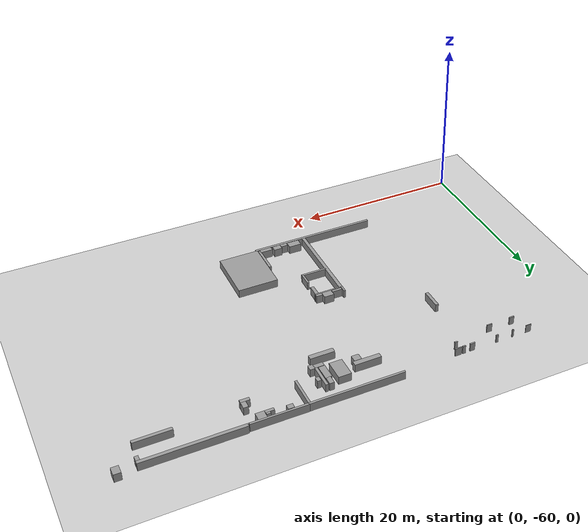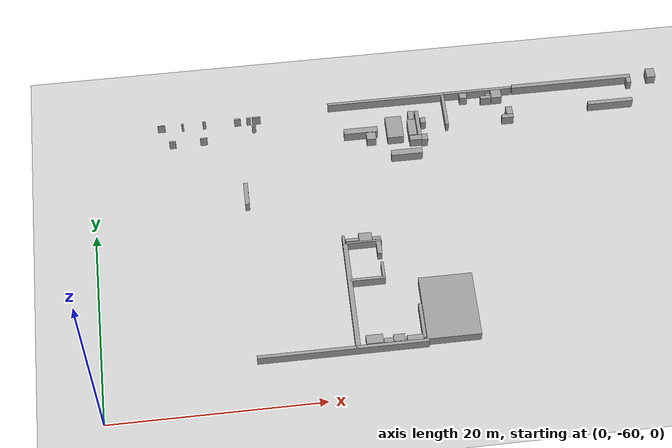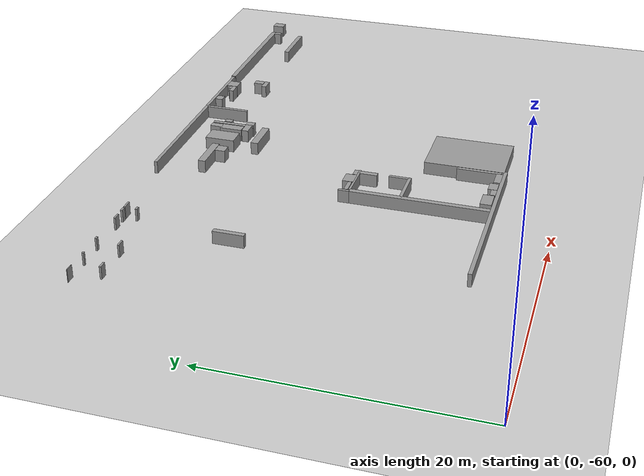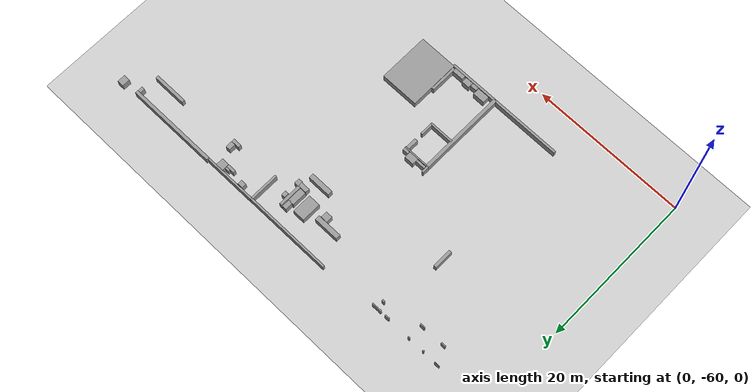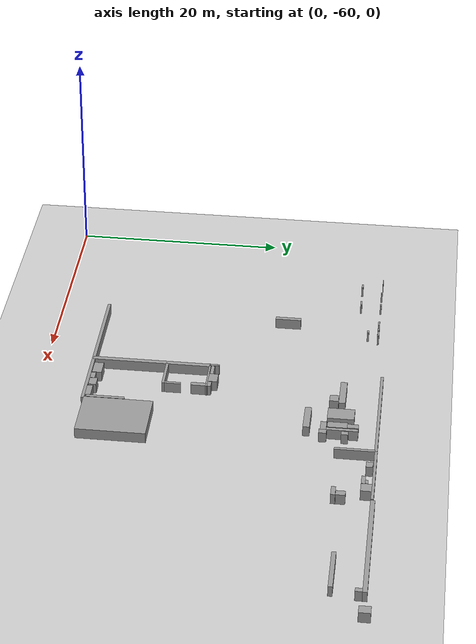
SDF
<sdf version="1.4">
 <world name="default">
  <model name="ground_plane">
   <static>1</static>
   <link name="link">
    <collision name="collision">
     <geometry><plane><normal>0 0 1</normal><size>300 300</size></plane></geometry>
     <surface><friction><ode><mu>100</mu><mu2>50</mu2></ode></friction></surface>
    </collision>
    <visual name="visual">
     <cast_shadows>0</cast_shadows>
     <geometry><plane><normal>0 0 1</normal><size>300 300</size></plane></geometry>
     <material>
      <script><uri>file://media/materials/scripts/gazebo.material</uri><name>Gazebo/Grey</name></script>
     </material>
    </visual>
    <velocity_decay><linear>0</linear><angular>0</angular></velocity_decay>
   </link>
  </model>
  <model name="wall_rect4319">
   <static>1</static>
   <link name="link">
    <pose>26.97291001315589 -31.96247932895389 0 0 -0 0</pose>
    <collision name="collision">
     <geometry><box><size>0.8999541167393121 0.8485281466409716 2.0</size></box></geometry>
    </collision>
    <visual name="visual">
     <cast_shadows>0</cast_shadows>
     <geometry><box><size>0.8999541167393121 0.8485281466409716 2.0</size></box></geometry>
     <material>
      <script>
       <uri>model://grey_wall/materials/scripts</uri>
       <uri>model://grey_wall/materials/textures</uri>
       <name>vrc/grey_wall</name>
      </script>
     </material>
    </visual>
    <velocity_decay><linear>0</linear><angular>0</angular></velocity_decay>
   </link>
  </model>
  <model name="wall_rect4321">
   <static>1</static>
   <link name="link">
    <pose>26.02795865855575 -31.203947396745924 0 0 -0 0</pose>
    <collision name="collision">
     <geometry><box><size>3.2784041898407854 0.6171113747936674 2.0</size></box></geometry>
    </collision>
    <visual name="visual">
     <cast_shadows>0</cast_shadows>
     <geometry><box><size>3.2784041898407854 0.6171113747936674 2.0</size></box></geometry>
     <material>
      <script>
       <uri>model://grey_wall/materials/scripts</uri>
       <uri>model://grey_wall/materials/textures</uri>
       <name>vrc/grey_wall</name>
      </script>
     </material>
    </visual>
    <velocity_decay><linear>0</linear><angular>0</angular></velocity_decay>
   </link>
  </model>
  <model name="wall_rect4323">
   <static>1</static>
   <link name="link">
    <pose>14.400000197989906 -37.359680342057445 0 0 -0 0</pose>
    <collision name="collision">
     <geometry><box><size>0.4000000215988988 2.47272746646285 2.0</size></box></geometry>
    </collision>
    <visual name="visual">
     <cast_shadows>0</cast_shadows>
     <geometry><box><size>0.4000000215988988 2.47272746646285 2.0</size></box></geometry>
     <material>
      <script>
       <uri>model://grey_wall/materials/scripts</uri>
       <uri>model://grey_wall/materials/textures</uri>
       <name>vrc/grey_wall</name>
      </script>
     </material>
    </visual>
    <velocity_decay><linear>0</linear><angular>0</angular></velocity_decay>
   </link>
  </model>
  <model name="wall_rect4238">
   <static>1</static>
   <link name="link">
    <pose>23.018182446186163 -43.64149906581162 0 0 -0 0</pose>
    <collision name="collision">
     <geometry><box><size>0.23636363963619678 0.890909145888106 2.0</size></box></geometry>
    </collision>
    <visual name="visual">
     <cast_shadows>0</cast_shadows>
     <geometry><box><size>0.23636363963619678 0.890909145888106 2.0</size></box></geometry>
     <material>
      <script>
       <uri>model://grey_wall/materials/scripts</uri>
       <uri>model://grey_wall/materials/textures</uri>
       <name>vrc/grey_wall</name>
      </script>
     </material>
    </visual>
    <velocity_decay><linear>0</linear><angular>0</angular></velocity_decay>
   </link>
  </model>
  <model name="wall_rect4240">
   <static>1</static>
   <link name="link">
    <pose>24.877274373043367 -44.06422562872055 0 0 -0 0</pose>
    <collision name="collision">
     <geometry><box><size>3.318182017808004 0.17272727207276062 2.0</size></box></geometry>
    </collision>
    <visual name="visual">
     <cast_shadows>0</cast_shadows>
     <geometry><box><size>3.318182017808004 0.17272727207276062 2.0</size></box></geometry>
     <material>
      <script>
       <uri>model://grey_wall/materials/scripts</uri>
       <uri>model://grey_wall/materials/textures</uri>
       <name>vrc/grey_wall</name>
      </script>
     </material>
    </visual>
    <velocity_decay><linear>0</linear><angular>0</angular></velocity_decay>
   </link>
  </model>
  <model name="wall_rect4242">
   <static>1</static>
   <link name="link">
    <pose>25.08181824857841 -43.559680997224035 0 0 -0 0</pose>
    <collision name="collision">
     <geometry><box><size>1.2181818522164467 0.890909145888106 2.0</size></box></geometry>
    </collision>
    <visual name="visual">
     <cast_shadows>0</cast_shadows>
     <geometry><box><size>1.2181818522164467 0.890909145888106 2.0</size></box></geometry>
     <material>
      <script>
       <uri>model://grey_wall/materials/scripts</uri>
       <uri>model://grey_wall/materials/textures</uri>
       <name>vrc/grey_wall</name>
      </script>
     </material>
    </visual>
    <velocity_decay><linear>0</linear><angular>0</angular></velocity_decay>
   </link>
  </model>
  <model name="wall_rect4244">
   <static>1</static>
   <link name="link">
    <pose>26.109091646071516 -43.7960433409263 0 0 -0 0</pose>
    <collision name="collision">
     <geometry><box><size>0.7636364107612338 0.34545454414552124 2.0</size></box></geometry>
    </collision>
    <visual name="visual">
     <cast_shadows>0</cast_shadows>
     <geometry><box><size>0.7636364107612338 0.34545454414552124 2.0</size></box></geometry>
     <material>
      <script>
       <uri>model://grey_wall/materials/scripts</uri>
       <uri>model://grey_wall/materials/textures</uri>
       <name>vrc/grey_wall</name>
      </script>
     </material>
    </visual>
    <velocity_decay><linear>0</linear><angular>0</angular></velocity_decay>
   </link>
  </model>
  <model name="wall_rect4246">
   <static>1</static>
   <link name="link">
    <pose>23.818183169749272 -43.764227911004184 0 0 -0 0</pose>
    <collision name="collision">
     <geometry><box><size>1.2545454702537446 0.31818183061754785 2.0</size></box></geometry>
    </collision>
    <visual name="visual">
     <cast_shadows>0</cast_shadows>
     <geometry><box><size>1.2545454702537446 0.31818183061754785 2.0</size></box></geometry>
     <material>
      <script>
       <uri>model://grey_wall/materials/scripts</uri>
       <uri>model://grey_wall/materials/textures</uri>
       <name>vrc/grey_wall</name>
      </script>
     </material>
    </visual>
    <velocity_decay><linear>0</linear><angular>0</angular></velocity_decay>
   </link>
  </model>
  <model name="wall_rect4248">
   <static>1</static>
   <link name="link">
    <pose>40.504547252162894 -31.123316871612616 0 0 -0 0</pose>
    <collision name="collision">
     <geometry><box><size>1.118181902613877 0.41818184501681366 2.0</size></box></geometry>
    </collision>
    <visual name="visual">
     <cast_shadows>0</cast_shadows>
     <geometry><box><size>1.118181902613877 0.41818184501681366 2.0</size></box></geometry>
     <material>
      <script>
       <uri>model://grey_wall/materials/scripts</uri>
       <uri>model://grey_wall/materials/textures</uri>
       <name>vrc/grey_wall</name>
      </script>
     </material>
    </visual>
    <velocity_decay><linear>0</linear><angular>0</angular></velocity_decay>
   </link>
  </model>
  <model name="wall_rect4250">
   <static>1</static>
   <link name="link">
    <pose>40.7636376490981 -30.459681119617798 0 0 -0 0</pose>
    <collision name="collision">
     <geometry><box><size>0.6000000143992659 0.872727336869457 2.0</size></box></geometry>
    </collision>
    <visual name="visual">
     <cast_shadows>0</cast_shadows>
     <geometry><box><size>0.6000000143992659 0.872727336869457 2.0</size></box></geometry>
     <material>
      <script>
       <uri>model://grey_wall/materials/scripts</uri>
       <uri>model://grey_wall/materials/textures</uri>
       <name>vrc/grey_wall</name>
      </script>
     </material>
    </visual>
    <velocity_decay><linear>0</linear><angular>0</angular></velocity_decay>
   </link>
  </model>
  <model name="wall_rect4252">
   <static>1</static>
   <link name="link">
    <pose>34.490909646262594 -29.61422566831852 0 0 -0 0</pose>
    <collision name="collision">
     <geometry><box><size>0.29090910988994134 3.709091055701616 2.0</size></box></geometry>
    </collision>
    <visual name="visual">
     <cast_shadows>0</cast_shadows>
     <geometry><box><size>0.29090910988994134 3.709091055701616 2.0</size></box></geometry>
     <material>
      <script>
       <uri>model://grey_wall/materials/scripts</uri>
       <uri>model://grey_wall/materials/textures</uri>
       <name>vrc/grey_wall</name>
      </script>
     </material>
    </visual>
    <velocity_decay><linear>0</linear><angular>0</angular></velocity_decay>
   </link>
  </model>
  <model name="wall_rect4254">
   <static>1</static>
   <link name="link">
    <pose>39.7636395066034 -28.26877046900641 0 0 -0 0</pose>
    <collision name="collision">
     <geometry><box><size>1.0181818810149783 0.981818190981351 2.0</size></box></geometry>
    </collision>
    <visual name="visual">
     <cast_shadows>0</cast_shadows>
     <geometry><box><size>1.0181818810149783 0.981818190981351 2.0</size></box></geometry>
     <material>
      <script>
       <uri>model://grey_wall/materials/scripts</uri>
       <uri>model://grey_wall/materials/textures</uri>
       <name>vrc/grey_wall</name>
      </script>
     </material>
    </visual>
    <velocity_decay><linear>0</linear><angular>0</angular></velocity_decay>
   </link>
  </model>
  <model name="wall_rect4256">
   <static>1</static>
   <link name="link">
    <pose>38.709091847661234 -28.577862363465258 0 0 -0 0</pose>
    <collision name="collision">
     <geometry><box><size>1.0545454990522762 0.3636363747630691 2.0</size></box></geometry>
    </collision>
    <visual name="visual">
     <cast_shadows>0</cast_shadows>
     <geometry><box><size>1.0545454990522762 0.3636363747630691 2.0</size></box></geometry>
     <material>
      <script>
       <uri>model://grey_wall/materials/scripts</uri>
       <uri>model://grey_wall/materials/textures</uri>
       <name>vrc/grey_wall</name>
      </script>
     </material>
    </visual>
    <velocity_decay><linear>0</linear><angular>0</angular></velocity_decay>
   </link>
  </model>
  <model name="wall_rect4258">
   <static>1</static>
   <link name="link">
    <pose>38.95454668699171 -28.268771725342354 0 0 -0 0</pose>
    <collision name="collision">
     <geometry><box><size>0.4909091026903084 0.25454546305411163 2.0</size></box></geometry>
    </collision>
    <visual name="visual">
     <cast_shadows>0</cast_shadows>
     <geometry><box><size>0.4909091026903084 0.25454546305411163 2.0</size></box></geometry>
     <material>
      <script>
       <uri>model://grey_wall/materials/scripts</uri>
       <uri>model://grey_wall/materials/textures</uri>
       <name>vrc/grey_wall</name>
      </script>
     </material>
    </visual>
    <velocity_decay><linear>0</linear><angular>0</angular></velocity_decay>
   </link>
  </model>
  <model name="wall_rect4260">
   <static>1</static>
   <link name="link">
    <pose>37.94545453694589 -27.66877087578567 0 0 -0 0</pose>
    <collision name="collision">
     <geometry><box><size>6.763636338764904 0.25454546305411163 2.0</size></box></geometry>
    </collision>
    <visual name="visual">
     <cast_shadows>0</cast_shadows>
     <geometry><box><size>6.763636338764904 0.25454546305411163 2.0</size></box></geometry>
     <material>
      <script>
       <uri>model://grey_wall/materials/scripts</uri>
       <uri>model://grey_wall/materials/textures</uri>
       <name>vrc/grey_wall</name>
      </script>
     </material>
    </visual>
    <velocity_decay><linear>0</linear><angular>0</angular></velocity_decay>
   </link>
  </model>
  <model name="wall_rect4262">
   <static>1</static>
   <link name="link">
    <pose>36.50909184046161 -28.159680838832113 0 0 -0 0</pose>
    <collision name="collision">
     <geometry><box><size>0.7272727207276064 0.6181818666157125 2.0</size></box></geometry>
    </collision>
    <visual name="visual">
     <cast_shadows>0</cast_shadows>
     <geometry><box><size>0.7272727207276064 0.6181818666157125 2.0</size></box></geometry>
     <material>
      <script>
       <uri>model://grey_wall/materials/scripts</uri>
       <uri>model://grey_wall/materials/textures</uri>
       <name>vrc/grey_wall</name>
      </script>
     </material>
    </visual>
    <velocity_decay><linear>0</linear><angular>0</angular></velocity_decay>
   </link>
  </model>
  <model name="wall_rect4264">
   <static>1</static>
   <link name="link">
    <pose>31.03636476997857 -31.368772038526387 0 0 -0 0</pose>
    <collision name="collision">
     <geometry><box><size>0.8000000287985317 1.9090909549067552 2.0</size></box></geometry>
    </collision>
    <visual name="visual">
     <cast_shadows>0</cast_shadows>
     <geometry><box><size>0.8000000287985317 1.9090909549067552 2.0</size></box></geometry>
     <material>
      <script>
       <uri>model://grey_wall/materials/scripts</uri>
       <uri>model://grey_wall/materials/textures</uri>
       <name>vrc/grey_wall</name>
      </script>
     </material>
    </visual>
    <velocity_decay><linear>0</linear><angular>0</angular></velocity_decay>
   </link>
  </model>
  <model name="wall_rect4266">
   <static>1</static>
   <link name="link">
    <pose>31.254546154218872 -32.65967982728368 0 0 -0 0</pose>
    <collision name="collision">
     <geometry><box><size>1.1636364251604996 0.5636363603638033 2.0</size></box></geometry>
    </collision>
    <visual name="visual">
     <cast_shadows>0</cast_shadows>
     <geometry><box><size>1.1636364251604996 0.5636363603638033 2.0</size></box></geometry>
     <material>
      <script>
       <uri>model://grey_wall/materials/scripts</uri>
       <uri>model://grey_wall/materials/textures</uri>
       <name>vrc/grey_wall</name>
      </script>
     </material>
    </visual>
    <velocity_decay><linear>0</linear><angular>0</angular></velocity_decay>
   </link>
  </model>
  <model name="wall_rect4268">
   <static>1</static>
   <link name="link">
    <pose>32.1000018359064 -32.67786342541112 0 0 -0 0</pose>
    <collision name="collision">
     <geometry><box><size>0.6000000143992659 0.709090954906755 2.0</size></box></geometry>
    </collision>
    <visual name="visual">
     <cast_shadows>0</cast_shadows>
     <geometry><box><size>0.6000000143992659 0.709090954906755 2.0</size></box></geometry>
     <material>
      <script>
       <uri>model://grey_wall/materials/scripts</uri>
       <uri>model://grey_wall/materials/textures</uri>
       <name>vrc/grey_wall</name>
      </script>
     </material>
    </visual>
    <velocity_decay><linear>0</linear><angular>0</angular></velocity_decay>
   </link>
  </model>
  <model name="wall_rect4270">
   <static>1</static>
   <link name="link">
    <pose>31.681819292525187 -30.923316889611698 0 0 -0 0</pose>
    <collision name="collision">
     <geometry><box><size>0.34545454414552124 2.9454547169367116 2.0</size></box></geometry>
    </collision>
    <visual name="visual">
     <cast_shadows>0</cast_shadows>
     <geometry><box><size>0.34545454414552124 2.9454547169367116 2.0</size></box></geometry>
     <material>
      <script>
       <uri>model://grey_wall/materials/scripts</uri>
       <uri>model://grey_wall/materials/textures</uri>
       <name>vrc/grey_wall</name>
      </script>
     </material>
    </visual>
    <velocity_decay><linear>0</linear><angular>0</angular></velocity_decay>
   </link>
  </model>
  <model name="wall_rect4272">
   <static>1</static>
   <link name="link">
    <pose>32.190909844252495 -30.659679859682033 0 0 -0 0</pose>
    <collision name="collision">
     <geometry><box><size>0.4909091026903084 0.6363636612350957 2.0</size></box></geometry>
    </collision>
    <visual name="visual">
     <cast_shadows>0</cast_shadows>
     <geometry><box><size>0.4909091026903084 0.6363636612350957 2.0</size></box></geometry>
     <material>
      <script>
       <uri>model://grey_wall/materials/scripts</uri>
       <uri>model://grey_wall/materials/textures</uri>
       <name>vrc/grey_wall</name>
      </script>
     </material>
    </visual>
    <velocity_decay><linear>0</linear><angular>0</angular></velocity_decay>
   </link>
  </model>
  <model name="wall_rect4274">
   <static>1</static>
   <link name="link">
    <pose>31.099999586021106 -29.968771340161993 0 0 -0 0</pose>
    <collision name="collision">
     <geometry><box><size>0.5636363603638033 1.036363618037298 2.0</size></box></geometry>
    </collision>
    <visual name="visual">
     <cast_shadows>0</cast_shadows>
     <geometry><box><size>0.5636363603638033 1.036363618037298 2.0</size></box></geometry>
     <material>
      <script>
       <uri>model://grey_wall/materials/scripts</uri>
       <uri>model://grey_wall/materials/textures</uri>
       <name>vrc/grey_wall</name>
      </script>
     </material>
    </visual>
    <velocity_decay><linear>0</linear><angular>0</angular></velocity_decay>
   </link>
  </model>
  <model name="wall_rect4276">
   <static>1</static>
   <link name="link">
    <pose>29.327272742326507 -31.168770591400165 0 0 -0 0</pose>
    <collision name="collision">
     <geometry><box><size>1.5636363675634362 2.4909092034851694 2.0</size></box></geometry>
    </collision>
    <visual name="visual">
     <cast_shadows>0</cast_shadows>
     <geometry><box><size>1.5636363675634362 2.4909092034851694 2.0</size></box></geometry>
     <material>
      <script>
       <uri>model://grey_wall/materials/scripts</uri>
       <uri>model://grey_wall/materials/textures</uri>
       <name>vrc/grey_wall</name>
      </script>
     </material>
    </visual>
    <velocity_decay><linear>0</linear><angular>0</angular></velocity_decay>
   </link>
  </model>
  <model name="wall_rect4278">
   <static>1</static>
   <link name="link">
    <pose>30.172726861693683 -34.23240850688469 0 0 -0 0</pose>
    <collision name="collision">
     <geometry><box><size>3.0000001439926587 0.6181818666157125 2.0</size></box></geometry>
    </collision>
    <visual name="visual">
     <cast_shadows>0</cast_shadows>
     <geometry><box><size>3.0000001439926587 0.6181818666157125 2.0</size></box></geometry>
     <material>
      <script>
       <uri>model://grey_wall/materials/scripts</uri>
       <uri>model://grey_wall/materials/textures</uri>
       <name>vrc/grey_wall</name>
      </script>
     </material>
    </visual>
    <velocity_decay><linear>0</linear><angular>0</angular></velocity_decay>
   </link>
  </model>
  <model name="wall_rect4280">
   <static>1</static>
   <link name="link">
    <pose>28.890910225833043 -27.69604374050593 0 0 -0 0</pose>
    <collision name="collision">
     <geometry><box><size>11.490909347477826 0.2727272864720265 2.0</size></box></geometry>
    </collision>
    <visual name="visual">
     <cast_shadows>0</cast_shadows>
     <geometry><box><size>11.490909347477826 0.2727272864720265 2.0</size></box></geometry>
     <material>
      <script>
       <uri>model://grey_wall/materials/scripts</uri>
       <uri>model://grey_wall/materials/textures</uri>
       <name>vrc/grey_wall</name>
      </script>
     </material>
    </visual>
    <velocity_decay><linear>0</linear><angular>0</angular></velocity_decay>
   </link>
  </model>
  <model name="wall_rect4282">
   <static>1</static>
   <link name="link">
    <pose>50.808838082199216 -30.490412864390525 0 0 -0 0</pose>
    <collision name="collision">
     <geometry><box><size>4.42263155655272 0.39855109547094847 2.0</size></box></geometry>
    </collision>
    <visual name="visual">
     <cast_shadows>0</cast_shadows>
     <geometry><box><size>4.42263155655272 0.39855109547094847 2.0</size></box></geometry>
     <material>
      <script>
       <uri>model://grey_wall/materials/scripts</uri>
       <uri>model://grey_wall/materials/textures</uri>
       <name>vrc/grey_wall</name>
      </script>
     </material>
    </visual>
    <velocity_decay><linear>0</linear><angular>0</angular></velocity_decay>
   </link>
  </model>
  <model name="wall_rect4285">
   <static>1</static>
   <link name="link">
    <pose>53.097293204403265 -28.07982117839704 0 0 -0 0</pose>
    <collision name="collision">
     <geometry><box><size>0.4371205874439697 0.7199632933914497 2.0</size></box></geometry>
    </collision>
    <visual name="visual">
     <cast_shadows>0</cast_shadows>
     <geometry><box><size>0.4371205874439697 0.7199632933914497 2.0</size></box></geometry>
     <material>
      <script>
       <uri>model://grey_wall/materials/scripts</uri>
       <uri>model://grey_wall/materials/textures</uri>
       <name>vrc/grey_wall</name>
      </script>
     </material>
    </visual>
    <velocity_decay><linear>0</linear><angular>0</angular></velocity_decay>
   </link>
  </model>
  <model name="wall_rect4287">
   <static>1</static>
   <link name="link">
    <pose>47.39544243076311 -27.604130123429787 0 0 -0 0</pose>
    <collision name="collision">
     <geometry><box><size>11.866537956428829 0.41140760959443246 2.0</size></box></geometry>
    </collision>
    <visual name="visual">
     <cast_shadows>0</cast_shadows>
     <geometry><box><size>11.866537956428829 0.41140760959443246 2.0</size></box></geometry>
     <material>
      <script>
       <uri>model://grey_wall/materials/scripts</uri>
       <uri>model://grey_wall/materials/textures</uri>
       <name>vrc/grey_wall</name>
      </script>
     </material>
    </visual>
    <velocity_decay><linear>0</linear><angular>0</angular></velocity_decay>
   </link>
  </model>
  <model name="wall_rect4289">
   <static>1</static>
   <link name="link">
    <pose>55.41146060609246 -27.494850498542185 0 0 -0 0</pose>
    <collision name="collision">
     <geometry><box><size>0.8485281466409716 1.0413754985115837 2.0</size></box></geometry>
    </collision>
    <visual name="visual">
     <cast_shadows>0</cast_shadows>
     <geometry><box><size>0.8485281466409716 1.0413754985115837 2.0</size></box></geometry>
     <material>
      <script>
       <uri>model://grey_wall/materials/scripts</uri>
       <uri>model://grey_wall/materials/textures</uri>
       <name>vrc/grey_wall</name>
      </script>
     </material>
    </visual>
    <velocity_decay><linear>0</linear><angular>0</angular></velocity_decay>
   </link>
  </model>
  <model name="wall_rect4291">
   <static>1</static>
   <link name="link">
    <pose>26.240089914055822 -44.818967749748246 0 0 -0 0</pose>
    <collision name="collision">
     <geometry><box><size>0.4371205514458051 1.4399265867828994 2.0</size></box></geometry>
    </collision>
    <visual name="visual">
     <cast_shadows>0</cast_shadows>
     <geometry><box><size>0.4371205514458051 1.4399265867828994 2.0</size></box></geometry>
     <material>
      <script>
       <uri>model://grey_wall/materials/scripts</uri>
       <uri>model://grey_wall/materials/textures</uri>
       <name>vrc/grey_wall</name>
      </script>
     </material>
    </visual>
    <velocity_decay><linear>0</linear><angular>0</angular></velocity_decay>
   </link>
  </model>
  <model name="wall_rect4293">
   <static>1</static>
   <link name="link">
    <pose>26.30437400379579 -47.30027012302805 0 0 -0 0</pose>
    <collision name="collision">
     <geometry><box><size>0.25712974249720855 1.6199174101307618 2.0</size></box></geometry>
    </collision>
    <visual name="visual">
     <cast_shadows>0</cast_shadows>
     <geometry><box><size>0.25712974249720855 1.6199174101307618 2.0</size></box></geometry>
     <material>
      <script>
       <uri>model://grey_wall/materials/scripts</uri>
       <uri>model://grey_wall/materials/textures</uri>
       <name>vrc/grey_wall</name>
      </script>
     </material>
    </visual>
    <velocity_decay><linear>0</linear><angular>0</angular></velocity_decay>
   </link>
  </model>
  <model name="wall_rect4296">
   <static>1</static>
   <link name="link">
    <pose>24.828484296556624 -48.161656112124774 0 0 -0 0</pose>
    <collision name="collision">
     <geometry><box><size>3.219336169364741 0.25712974249720855 2.0</size></box></geometry>
    </collision>
    <visual name="visual">
     <cast_shadows>0</cast_shadows>
     <geometry><box><size>3.219336169364741 0.25712974249720855 2.0</size></box></geometry>
     <material>
      <script>
       <uri>model://grey_wall/materials/scripts</uri>
       <uri>model://grey_wall/materials/textures</uri>
       <name>vrc/grey_wall</name>
      </script>
     </material>
    </visual>
    <velocity_decay><linear>0</linear><angular>0</angular></velocity_decay>
   </link>
  </model>
  <model name="wall_rect4298">
   <static>1</static>
   <link name="link">
    <pose>31.90980029874157 -51.9286054879778 0 0 -0 0</pose>
    <collision name="collision">
     <geometry><box><size>4.988317011645479 6.556808379681571 2.0</size></box></geometry>
    </collision>
    <visual name="visual">
     <cast_shadows>0</cast_shadows>
     <geometry><box><size>4.988317011645479 6.556808379681571 2.0</size></box></geometry>
     <material>
      <script>
       <uri>model://grey_wall/materials/scripts</uri>
       <uri>model://grey_wall/materials/textures</uri>
       <name>vrc/grey_wall</name>
      </script>
     </material>
    </visual>
    <velocity_decay><linear>0</linear><angular>0</angular></velocity_decay>
   </link>
  </model>
  <model name="wall_rect4300">
   <static>1</static>
   <link name="link">
    <pose>23.128821098985092 -49.71728949371245 0 0 -0 0</pose>
    <collision name="collision">
     <geometry><box><size>0.4371205514458051 11.23657007471131 2.0</size></box></geometry>
    </collision>
    <visual name="visual">
     <cast_shadows>0</cast_shadows>
     <geometry><box><size>0.4371205514458051 11.23657007471131 2.0</size></box></geometry>
     <material>
      <script>
       <uri>model://grey_wall/materials/scripts</uri>
       <uri>model://grey_wall/materials/textures</uri>
       <name>vrc/grey_wall</name>
      </script>
     </material>
    </visual>
    <velocity_decay><linear>0</linear><angular>0</angular></velocity_decay>
   </link>
  </model>
  <model name="wall_rect4302">
   <static>1</static>
   <link name="link">
    <pose>21.778889265109708 -55.28414878055857 0 0 -0 0</pose>
    <collision name="collision">
     <geometry><box><size>15.633488142240557 0.30855568379701726 2.0</size></box></geometry>
    </collision>
    <visual name="visual">
     <cast_shadows>0</cast_shadows>
     <geometry><box><size>15.633488142240557 0.30855568379701726 2.0</size></box></geometry>
     <material>
      <script>
       <uri>model://grey_wall/materials/scripts</uri>
       <uri>model://grey_wall/materials/textures</uri>
       <name>vrc/grey_wall</name>
      </script>
     </material>
    </visual>
    <velocity_decay><linear>0</linear><angular>0</angular></velocity_decay>
   </link>
  </model>
  <model name="wall_rect4304">
   <static>1</static>
   <link name="link">
    <pose>24.68445527973202 -54.62846762220674 0 0 -0 0</pose>
    <collision name="collision">
     <geometry><box><size>1.5427785269795804 0.8999541167393121 2.0</size></box></geometry>
    </collision>
    <visual name="visual">
     <cast_shadows>0</cast_shadows>
     <geometry><box><size>1.5427785269795804 0.8999541167393121 2.0</size></box></geometry>
     <material>
      <script>
       <uri>model://grey_wall/materials/scripts</uri>
       <uri>model://grey_wall/materials/textures</uri>
       <name>vrc/grey_wall</name>
      </script>
     </material>
    </visual>
    <velocity_decay><linear>0</linear><angular>0</angular></velocity_decay>
   </link>
  </model>
  <model name="wall_rect4306">
   <static>1</static>
   <link name="link">
    <pose>28.361411961772543 -54.885596032771865 0 0 -0 0</pose>
    <collision name="collision">
     <geometry><box><size>1.4913524848849107 0.5399724700435873 2.0</size></box></geometry>
    </collision>
    <visual name="visual">
     <cast_shadows>0</cast_shadows>
     <geometry><box><size>1.4913524848849107 0.5399724700435873 2.0</size></box></geometry>
     <material>
      <script>
       <uri>model://grey_wall/materials/scripts</uri>
       <uri>model://grey_wall/materials/textures</uri>
       <name>vrc/grey_wall</name>
      </script>
     </material>
    </visual>
    <velocity_decay><linear>0</linear><angular>0</angular></velocity_decay>
   </link>
  </model>
  <model name="wall_rect4308">
   <static>1</static>
   <link name="link">
    <pose>26.913636335165087 -54.74150059933344 0 0 -0 0</pose>
    <collision name="collision">
     <geometry><box><size>1.0272727855243027 0.7272727207276064 2.0</size></box></geometry>
    </collision>
    <visual name="visual">
     <cast_shadows>0</cast_shadows>
     <geometry><box><size>1.0272727855243027 0.7272727207276064 2.0</size></box></geometry>
     <material>
      <script>
       <uri>model://grey_wall/materials/scripts</uri>
       <uri>model://grey_wall/materials/textures</uri>
       <name>vrc/grey_wall</name>
      </script>
     </material>
    </visual>
    <velocity_decay><linear>0</linear><angular>0</angular></velocity_decay>
   </link>
  </model>
  <model name="wall_rect4310">
   <static>1</static>
   <link name="link">
    <pose>25.9500020770941 -54.89604461526133 0 0 -0 0</pose>
    <collision name="collision">
     <geometry><box><size>0.8636364323601325 0.4545454558544787 2.0</size></box></geometry>
    </collision>
    <visual name="visual">
     <cast_shadows>0</cast_shadows>
     <geometry><box><size>0.8636364323601325 0.4545454558544787 2.0</size></box></geometry>
     <material>
      <script>
       <uri>model://grey_wall/materials/scripts</uri>
       <uri>model://grey_wall/materials/textures</uri>
       <name>vrc/grey_wall</name>
      </script>
     </material>
    </visual>
    <velocity_decay><linear>0</linear><angular>0</angular></velocity_decay>
   </link>
  </model>
  <model name="wall_rect4312">
   <static>1</static>
   <link name="link">
    <pose>29.22727306271017 -53.20059185302496 0 0 -0 0</pose>
    <collision name="collision">
     <geometry><box><size>0.30909093330785625 3.5909092250840686 2.0</size></box></geometry>
    </collision>
    <visual name="visual">
     <cast_shadows>0</cast_shadows>
     <geometry><box><size>0.30909093330785625 3.5909092250840686 2.0</size></box></geometry>
     <material>
      <script>
       <uri>model://grey_wall/materials/scripts</uri>
       <uri>model://grey_wall/materials/textures</uri>
       <name>vrc/grey_wall</name>
      </script>
     </material>
    </visual>
    <velocity_decay><linear>0</linear><angular>0</angular></velocity_decay>
   </link>
  </model>
  <model name="wall_rect4316">
   <static>1</static>
   <link name="link">
    <pose>16.032039230511874 -28.433375197998906 0 0 -0 0</pose>
    <collision name="collision">
     <geometry><box><size>0.797102176542631 0.14142136017337292 2.0</size></box></geometry>
    </collision>
    <visual name="visual">
     <cast_shadows>0</cast_shadows>
     <geometry><box><size>0.797102176542631 0.14142136017337292 2.0</size></box></geometry>
     <material>
      <script>
       <uri>model://grey_wall/materials/scripts</uri>
       <uri>model://grey_wall/materials/textures</uri>
       <name>vrc/grey_wall</name>
      </script>
     </material>
    </visual>
    <velocity_decay><linear>0</linear><angular>0</angular></velocity_decay>
   </link>
  </model>
  <model name="wall_rect4318">
   <static>1</static>
   <link name="link">
    <pose>10.773736419422393 -30.38756148576521 0 0 -0 0</pose>
    <collision name="collision">
     <geometry><box><size>0.6685373304927421 0.14142136017337292 2.0</size></box></geometry>
    </collision>
    <visual name="visual">
     <cast_shadows>0</cast_shadows>
     <geometry><box><size>0.6685373304927421 0.14142136017337292 2.0</size></box></geometry>
     <material>
      <script>
       <uri>model://grey_wall/materials/scripts</uri>
       <uri>model://grey_wall/materials/textures</uri>
       <name>vrc/grey_wall</name>
      </script>
     </material>
    </visual>
    <velocity_decay><linear>0</linear><angular>0</angular></velocity_decay>
   </link>
  </model>
  <model name="wall_rect4320">
   <static>1</static>
   <link name="link">
    <pose>7.746033869809181 -30.43255816205467 0 0 -0 0</pose>
    <collision name="collision">
     <geometry><box><size>0.6042549398661458 0.15427784549832513 2.0</size></box></geometry>
    </collision>
    <visual name="visual">
     <cast_shadows>0</cast_shadows>
     <geometry><box><size>0.6042549398661458 0.15427784549832513 2.0</size></box></geometry>
     <material>
      <script>
       <uri>model://grey_wall/materials/scripts</uri>
       <uri>model://grey_wall/materials/textures</uri>
       <name>vrc/grey_wall</name>
      </script>
     </material>
    </visual>
    <velocity_decay><linear>0</linear><angular>0</angular></velocity_decay>
   </link>
  </model>
  <model name="wall_rect4322">
   <static>1</static>
   <link name="link">
    <pose>6.768940391143098 -28.401233157808683 0 0 -0 0</pose>
    <collision name="collision">
     <geometry><box><size>0.7071067864675986 0.05142595065933158 2.0</size></box></geometry>
    </collision>
    <visual name="visual">
     <cast_shadows>0</cast_shadows>
     <geometry><box><size>0.7071067864675986 0.05142595065933158 2.0</size></box></geometry>
     <material>
      <script>
       <uri>model://grey_wall/materials/scripts</uri>
       <uri>model://grey_wall/materials/textures</uri>
       <name>vrc/grey_wall</name>
      </script>
     </material>
    </visual>
    <velocity_decay><linear>0</linear><angular>0</angular></velocity_decay>
   </link>
  </model>
  <model name="wall_rect4324">
   <static>1</static>
   <link name="link">
    <pose>8.825978590307551 -28.446230862565706 0 0 -0 0</pose>
    <collision name="collision">
     <geometry><box><size>0.19284731587244755 0.14142136017337292 2.0</size></box></geometry>
    </collision>
    <visual name="visual">
     <cast_shadows>0</cast_shadows>
     <geometry><box><size>0.19284731587244755 0.14142136017337292 2.0</size></box></geometry>
     <material>
      <script>
       <uri>model://grey_wall/materials/scripts</uri>
       <uri>model://grey_wall/materials/textures</uri>
       <name>vrc/grey_wall</name>
      </script>
     </material>
    </visual>
    <velocity_decay><linear>0</linear><angular>0</angular></velocity_decay>
   </link>
  </model>
  <model name="wall_rect4326">
   <static>1</static>
   <link name="link">
    <pose>10.940870764644934 -28.433375197998906 0 0 -0 0</pose>
    <collision name="collision">
     <geometry><box><size>0.28284272754637874 0.14142136017337292 2.0</size></box></geometry>
    </collision>
    <visual name="visual">
     <cast_shadows>0</cast_shadows>
     <geometry><box><size>0.28284272754637874 0.14142136017337292 2.0</size></box></geometry>
     <material>
      <script>
       <uri>model://grey_wall/materials/scripts</uri>
       <uri>model://grey_wall/materials/textures</uri>
       <name>vrc/grey_wall</name>
      </script>
     </material>
    </visual>
    <velocity_decay><linear>0</linear><angular>0</angular></velocity_decay>
   </link>
  </model>
  <model name="wall_rect4328">
   <static>1</static>
   <link name="link">
    <pose>14.193562574205714 -28.452659105228182 0 0 -0 0</pose>
    <collision name="collision">
     <geometry><box><size>0.6171113747936674 0.15427784549832513 2.0</size></box></geometry>
    </collision>
    <visual name="visual">
     <cast_shadows>0</cast_shadows>
     <geometry><box><size>0.6171113747936674 0.15427784549832513 2.0</size></box></geometry>
     <material>
      <script>
       <uri>model://grey_wall/materials/scripts</uri>
       <uri>model://grey_wall/materials/textures</uri>
       <name>vrc/grey_wall</name>
      </script>
     </material>
    </visual>
    <velocity_decay><linear>0</linear><angular>0</angular></velocity_decay>
   </link>
  </model>
  <model name="wall_rect4330">
   <static>1</static>
   <link name="link">
    <pose>15.286362984469601 -28.44623168332386 0 0 -0 0</pose>
    <collision name="collision">
     <geometry><box><size>0.3856946245452622 0.1671343308232773 2.0</size></box></geometry>
    </collision>
    <visual name="visual">
     <cast_shadows>0</cast_shadows>
     <geometry><box><size>0.3856946245452622 0.1671343308232773 2.0</size></box></geometry>
     <material>
      <script>
       <uri>model://grey_wall/materials/scripts</uri>
       <uri>model://grey_wall/materials/textures</uri>
       <name>vrc/grey_wall</name>
      </script>
     </material>
    </visual>
    <velocity_decay><linear>0</linear><angular>0</angular></velocity_decay>
   </link>
  </model>
  <model name="wall_rect4332">
   <static>1</static>
   <link name="link">
    <pose>15.73634065840787 -29.436181211737104 0 0 -0 0</pose>
    <collision name="collision">
     <geometry><box><size>0.35998164669572486 0.1671343308232773 2.0</size></box></geometry>
    </collision>
    <visual name="visual">
     <cast_shadows>0</cast_shadows>
     <geometry><box><size>0.35998164669572486 0.1671343308232773 2.0</size></box></geometry>
     <material>
      <script>
       <uri>model://grey_wall/materials/scripts</uri>
       <uri>model://grey_wall/materials/textures</uri>
       <name>vrc/grey_wall</name>
      </script>
     </material>
    </visual>
    <velocity_decay><linear>0</linear><angular>0</angular></velocity_decay>
   </link>
  </model>
 </world>
</sdf>
